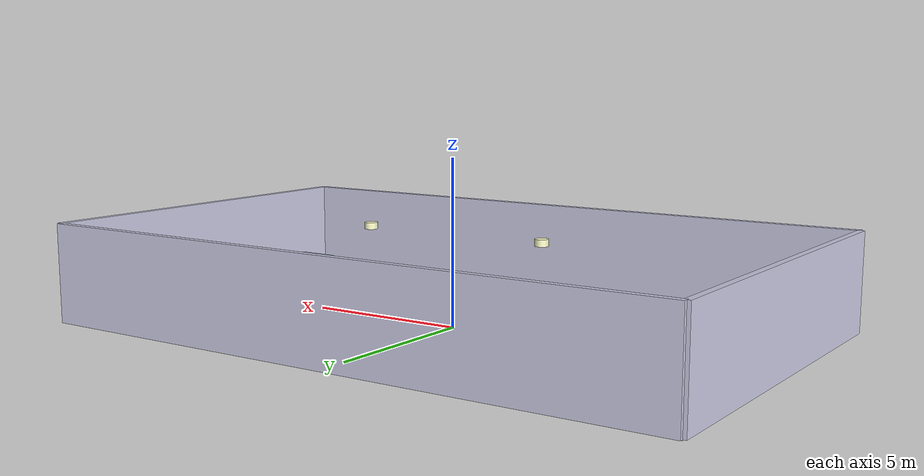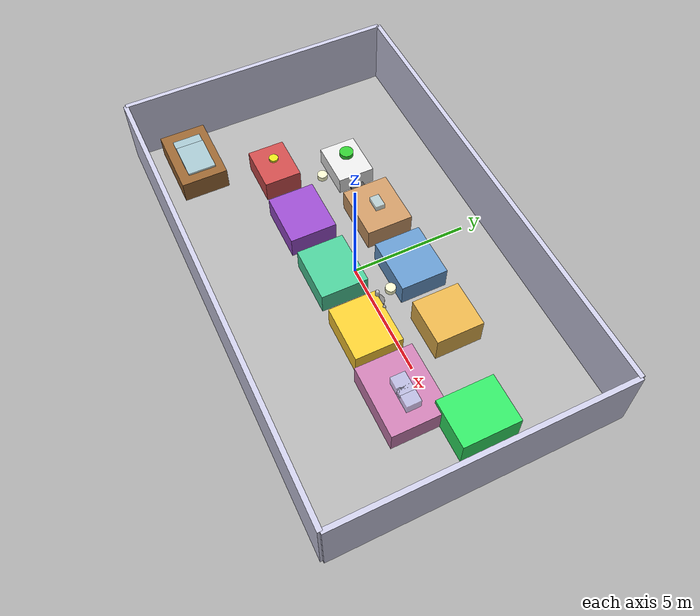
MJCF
<mujoco model="aquarium_factory">
  <compiler angle="degree" coordinate="local"/>
  <option timestep="0.01" gravity="0 0 -9.81"/>

  <worldbody>
    <geom name="floor" type="plane" size="10 6 0.1" rgba="0.7 0.7 0.7 1"/>

    <!-- Factory walls -->
    <body name="wall_north" pos="0 6 1.5">
      <geom type="box" size="10 0.1 1.5" rgba="0.8 0.8 0.9 1"/>
    </body>
    <body name="wall_south" pos="0 -6 1.5">
      <geom type="box" size="10 0.1 1.5" rgba="0.8 0.8 0.9 1"/>
    </body>
    <body name="wall_east" pos="10 0 1.5">
      <geom type="box" size="0.1 6 1.5" rgba="0.8 0.8 0.9 1"/>
    </body>
    <body name="wall_west" pos="-10 0 1.5">
      <geom type="box" size="0.1 6 1.5" rgba="0.8 0.8 0.9 1"/>
    </body>

    <!-- Raw Material Storage Area -->
    <body name="raw_material_storage" pos="-8 -4 0.5">
      <geom type="box" size="1.5 1 0.5" rgba="0.6 0.4 0.2 1"/>
    </body>

    <!-- Glass sheets (raw materials) -->
    <body name="glass_sheet1" pos="-8 -4 1.2">
      <joint type="free"/>
      <geom type="box" size="0.8 0.6 0.05" rgba="0.7 0.9 1 0.8"/>
    </body>
    <body name="glass_sheet2" pos="-7.5 -4 1.3">
      <joint type="free"/>
      <geom type="box" size="0.8 0.6 0.05" rgba="0.7 0.9 1 0.8"/>
    </body>

    <!-- Cleaning Station -->
    <body name="cleaning_station" pos="-5 2 0.4">
      <geom type="box" size="1 0.8 0.4" rgba="0.9 0.9 0.9 1"/>
    </body>
    <body name="cleaning_brush" pos="-5 2 1.2">
      <joint name="brush_rotation" type="hinge" axis="0 0 1"/>
      <geom type="cylinder" size="0.3 0.1" rgba="0.2 0.8 0.2 1"/>
    </body>

    <!-- Complementing Station -->
    <body name="complementing_station" pos="-2 2 0.5">
      <geom type="box" size="1.2 1 0.5" rgba="0.8 0.6 0.4 1"/>
    </body>

    <!-- Conveyor belt -->
    <body name="conveyor1" pos="-3.5 2 0.15">
      <joint name="conveyor1_move" type="slide" axis="1 0 0"/>
      <geom type="box" size="2 0.3 0.05" rgba="0.3 0.3 0.3 1"/>
    </body>

    <!-- Silicone Setting Area -->
    <body name="silicone_station" pos="1 2 0.5">
      <geom type="box" size="1.2 1 0.5" rgba="0.4 0.6 0.8 1"/>
    </body>

    <!-- Inspection Station -->
    <body name="inspection_station" pos="4 2 0.6">
      <geom type="box" size="1 1 0.6" rgba="0.9 0.7 0.3 1"/>
    </body>

    <!-- Assembly Line - Lower Section -->
    <body name="sawing_station" pos="-6 -1 0.5">
      <geom type="box" size="1 0.8 0.5" rgba="0.8 0.3 0.3 1"/>
    </body>
    <body name="saw_blade" pos="-6 -1 1.3">
      <joint name="saw_rotation" type="hinge" axis="0 1 0"/>
      <geom type="cylinder" size="0.2 0.05" rgba="0.9 0.9 0.1 1"/>
    </body>

    <!-- Molding Station -->
    <body name="molding_station" pos="-3 -1 0.5">
      <geom type="box" size="1.2 1 0.5" rgba="0.6 0.3 0.8 1"/>
    </body>

    <!-- Cover Assembly -->
    <body name="cover_station" pos="0 -1 0.5">
      <geom type="box" size="1.2 1 0.5" rgba="0.3 0.8 0.6 1"/>
    </body>

    <!-- Lighting Installation -->
    <body name="lighting_station" pos="3 -1 0.5">
      <geom type="box" size="1.2 1 0.5" rgba="1 0.8 0.2 1"/>
    </body>

    <!-- Final Assembly -->
    <body name="final_assembly" pos="6 -1 0.5">
      <geom type="box" size="1.5 1.2 0.5" rgba="0.8 0.5 0.7 1"/>
    </body>

    <!-- Quality Control -->
    <body name="quality_control" pos="8 1 0.6">
      <geom type="box" size="1 1.2 0.6" rgba="0.2 0.9 0.4 1"/>
    </body>

    <!-- Finished aquariums -->
    <body name="aquarium1" pos="6 -1 1.2">
      <joint type="free"/>
      <geom type="box" size="0.4 0.3 0.25" rgba="0.7 0.9 1 0.6"/>
    </body>
    <body name="aquarium2" pos="6.5 -1 1.2">
      <joint type="free"/>
      <geom type="box" size="0.4 0.3 0.25" rgba="0.7 0.9 1 0.6"/>
    </body>

    <!-- Robotic arm for material handling -->
    <body name="robot_base" pos="2 0 0.3">
      <geom type="cylinder" size="0.3 0.3" rgba="0.5 0.5 0.5 1"/>
      <body name="robot_arm1" pos="0 0 0.3">
        <joint name="arm1_rotation" type="hinge" axis="0 0 1"/>
        <geom type="capsule" size="0.08 0.6" rgba="0.8 0.8 0.8 1"/>
        <body name="robot_arm2" pos="0.6 0 0">
          <joint name="arm2_rotation" type="hinge" axis="0 0 1"/>
          <geom type="capsule" size="0.06 0.4" rgba="0.7 0.7 0.7 1"/>
        </body>
      </body>
    </body>

    <!-- Work-in-progress items -->
    <body name="glass_piece" pos="-2 2 1.1">
      <joint type="free"/>
      <geom type="box" size="0.3 0.2 0.15" rgba="0.7 0.9 1 0.7"/>
    </body>

    <!-- Overhead lighting -->
    <body name="light1" pos="-3 0 2.8">
      <geom type="cylinder" size="0.2 0.1" rgba="1 1 0.8 1"/>
    </body>
    <body name="light2" pos="3 0 2.8">
      <geom type="cylinder" size="0.2 0.1" rgba="1 1 0.8 1"/>
    </body>
  </worldbody>

  <actuator>
    <motor joint="brush_rotation" gear="10" ctrlrange="-1 1"/>
    <motor joint="conveyor1_move" gear="20" ctrlrange="-1 1"/>
    <motor joint="saw_rotation" gear="30" ctrlrange="-1 1"/>
    <motor joint="arm1_rotation" gear="100" ctrlrange="-2 2"/>
    <motor joint="arm2_rotation" gear="50" ctrlrange="-2 2"/>
  </actuator>
</mujoco>
